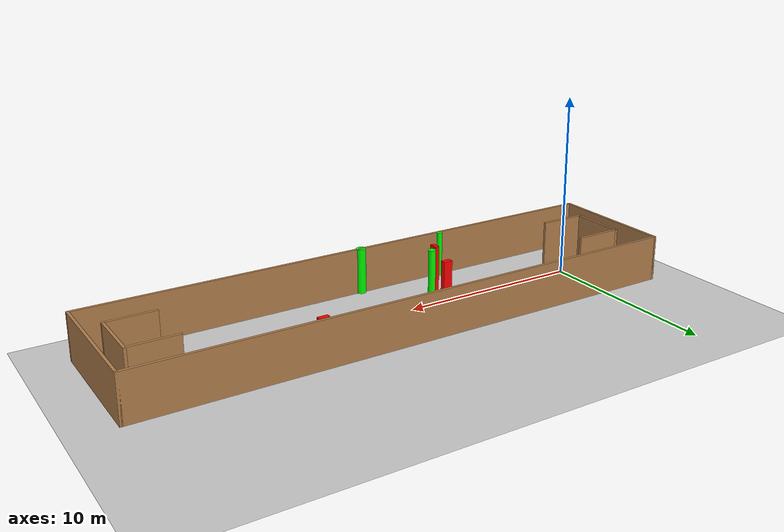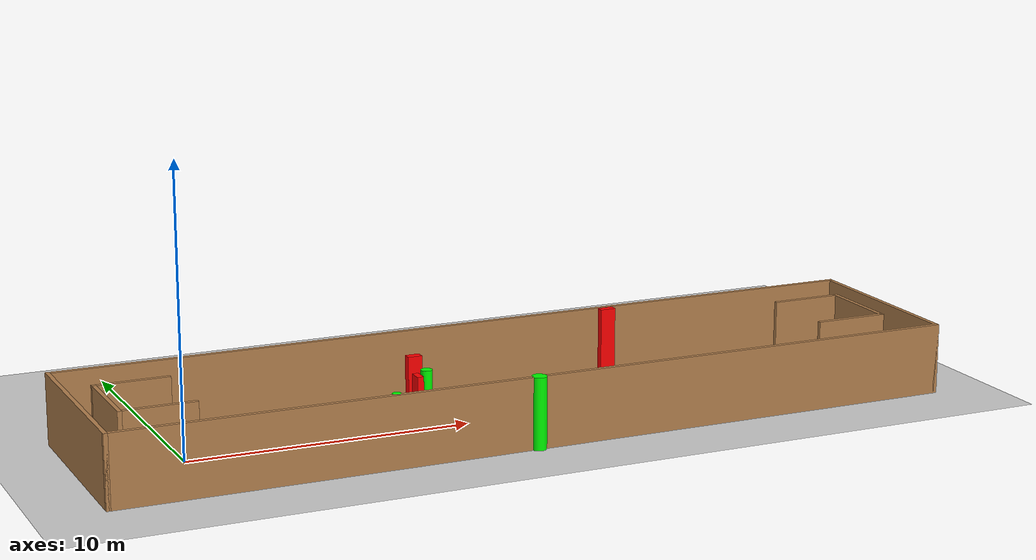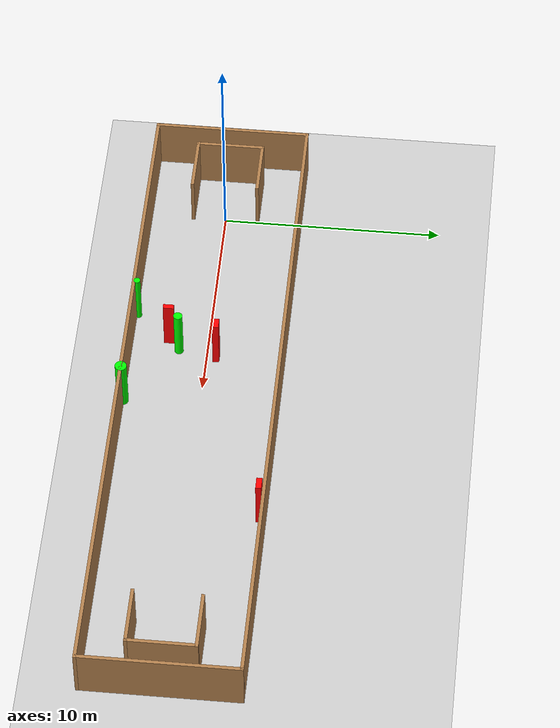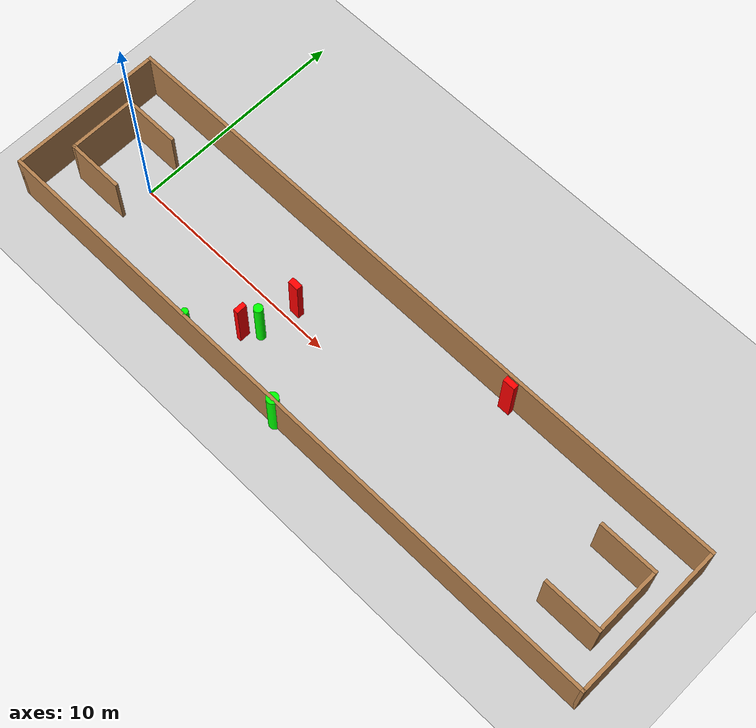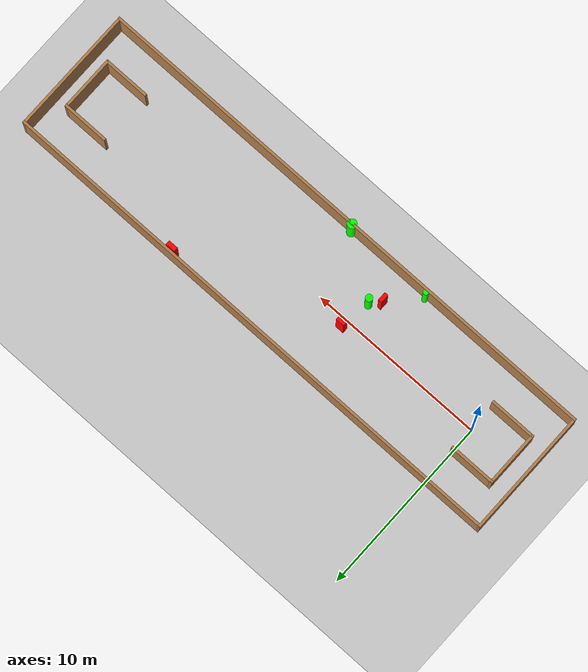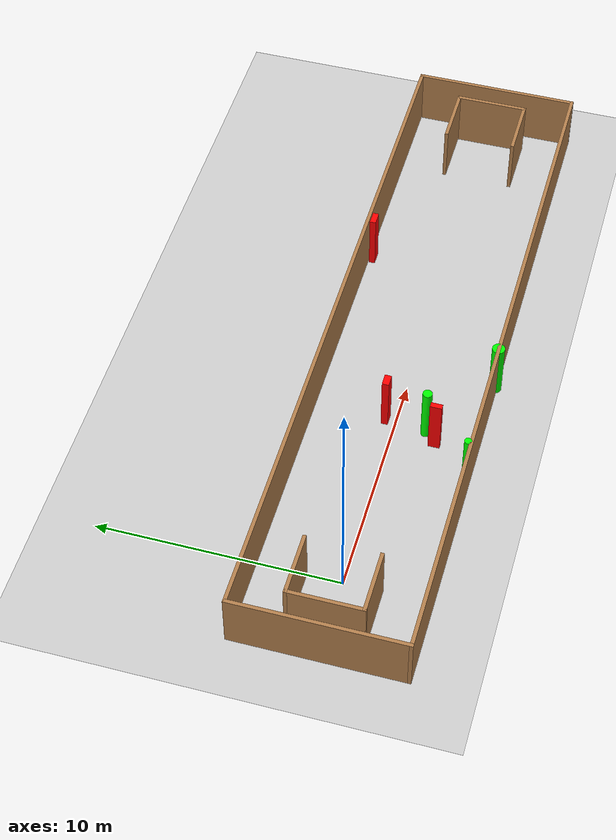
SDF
<sdf version="1.7">
 <world name="default">
  <light name="sun" type="directional">
   <pose>0 0 10 0 -0 0</pose>
   <diffuse>0.8 0.8 0.8 1</diffuse>
   <specular>0.2 0.2 0.2 1</specular>
   <attenuation>
    <range>1000</range>
    <constant>0.9</constant>
    <linear>0.01</linear>
    <quadratic>0.001</quadratic>
   </attenuation>
   <direction>-0.5 0.1 -0.9</direction>
   <spot><inner_angle>0</inner_angle><outer_angle>0</outer_angle><falloff>0</falloff></spot>
  </light>
  <model name="ground_plane">
   <static>1</static>
   <link name="link">
    <collision name="collision">
     <geometry><plane><normal>0 0 1</normal><size>100 100</size></plane></geometry>
     <surface>
      <contact><collide_bitmask>65535</collide_bitmask></contact>
      <friction><ode><mu>100</mu><mu2>50</mu2></ode></friction>
     </surface>
    </collision>
    <visual name="visual">
     <cast_shadows>0</cast_shadows>
     <geometry><plane><normal>0 0 1</normal><size>100 100</size></plane></geometry>
     <material>
      <script><uri>file://media/materials/scripts/gazebo.material</uri><name>Gazebo/Grey</name></script>
     </material>
    </visual>
   </link>
  </model>
  <gravity>0 0 -9.8</gravity>
  <magnetic_field>6e-06 2.3e-05 -4.2e-05</magnetic_field>
  <atmosphere type="adiabatic"/>
  <physics type="ode">
   <max_step_size>0.001</max_step_size>
   <real_time_factor>1</real_time_factor>
   <real_time_update_rate>1000</real_time_update_rate>
  </physics>
  <scene><ambient>0.4 0.4 0.4 1</ambient><background>0.7 0.7 0.7 1</background><shadows>1</shadows></scene>
  <spherical_coordinates>
   <surface_model>EARTH_WGS84</surface_model>
   <latitude_deg>0</latitude_deg>
   <longitude_deg>0</longitude_deg>
   <elevation>0</elevation>
   <heading_deg>0</heading_deg>
  </spherical_coordinates>
  <model name="my_base_walls">
   <link name="Wall_0">
    <collision name="Wall_0_Collision">
     <geometry><box><size>7.15 0.15 2.5</size></box></geometry>
     <pose>0 0 1.25 0 -0 0</pose>
    </collision>
    <visual name="Wall_0_Visual">
     <pose>0 0 1.25 0 -0 0</pose>
     <geometry><box><size>7.15 0.15 2.5</size></box></geometry>
     <material>
      <script><uri>file://media/materials/scripts/gazebo.material</uri><name>Gazebo/Wood</name></script>
      <ambient>1 1 1 1</ambient>
     </material>
     <meta><layer>0</layer></meta>
    </visual>
    <pose>-15 0 0 0 -0 1.5708</pose>
   </link>
   <link name="Wall_10">
    <collision name="Wall_10_Collision">
     <geometry><box><size>2.65 0.15 2.5</size></box></geometry>
     <pose>0 0 1.25 0 -0 0</pose>
    </collision>
    <visual name="Wall_10_Visual">
     <pose>0 0 1.25 0 -0 0</pose>
     <geometry><box><size>2.65 0.15 2.5</size></box></geometry>
     <material>
      <script><uri>file://media/materials/scripts/gazebo.material</uri><name>Gazebo/Wood</name></script>
      <ambient>1 1 1 1</ambient>
     </material>
     <meta><layer>0</layer></meta>
    </visual>
    <pose>-12.75 -1.5 0 0 -0 0</pose>
   </link>
   <link name="Wall_12">
    <collision name="Wall_12_Collision">
     <geometry><box><size>2.65 0.15 2.5</size></box></geometry>
     <pose>0 0 1.25 0 -0 0</pose>
    </collision>
    <visual name="Wall_12_Visual">
     <pose>0 0 1.25 0 -0 0</pose>
     <geometry><box><size>2.65 0.15 2.5</size></box></geometry>
     <material>
      <script><uri>file://media/materials/scripts/gazebo.material</uri><name>Gazebo/Wood</name></script>
      <ambient>1 1 1 1</ambient>
     </material>
     <meta><layer>0</layer></meta>
    </visual>
    <pose>-12.75 1.5 0 0 -0 0</pose>
   </link>
   <link name="Wall_14">
    <collision name="Wall_14_Collision">
     <geometry><box><size>3.15 0.15 2.5</size></box></geometry>
     <pose>0 0 1.25 0 -0 0</pose>
    </collision>
    <visual name="Wall_14_Visual">
     <pose>0 0 1.25 0 -0 0</pose>
     <geometry><box><size>3.15 0.15 2.5</size></box></geometry>
     <material>
      <script><uri>file://media/materials/scripts/gazebo.material</uri><name>Gazebo/Wood</name></script>
      <ambient>1 1 1 1</ambient>
     </material>
     <meta><layer>0</layer></meta>
    </visual>
    <pose>14 0 0 0 -0 -1.5708</pose>
   </link>
   <link name="Wall_15">
    <collision name="Wall_15_Collision">
     <geometry><box><size>2.65 0.15 2.5</size></box></geometry>
     <pose>0 0 1.25 0 -0 0</pose>
    </collision>
    <visual name="Wall_15_Visual">
     <pose>0 0 1.25 0 -0 0</pose>
     <geometry><box><size>2.65 0.15 2.5</size></box></geometry>
     <material>
      <script><uri>file://media/materials/scripts/gazebo.material</uri><name>Gazebo/Wood</name></script>
      <ambient>1 1 1 1</ambient>
     </material>
     <meta><layer>0</layer></meta>
    </visual>
    <pose>12.75 -1.5 0 0 -0 3.14159</pose>
   </link>
   <link name="Wall_17">
    <collision name="Wall_17_Collision">
     <geometry><box><size>2.65 0.15 2.5</size></box></geometry>
     <pose>0 0 1.25 0 -0 0</pose>
    </collision>
    <visual name="Wall_17_Visual">
     <pose>0 0 1.25 0 -0 0</pose>
     <geometry><box><size>2.65 0.15 2.5</size></box></geometry>
     <material>
      <script><uri>file://media/materials/scripts/gazebo.material</uri><name>Gazebo/Wood</name></script>
      <ambient>1 1 1 1</ambient>
     </material>
     <meta><layer>0</layer></meta>
    </visual>
    <pose>12.75 1.5 0 0 -0 3.14159</pose>
   </link>
   <link name="Wall_2">
    <collision name="Wall_2_Collision">
     <geometry><box><size>30.15 0.15 2.5</size></box></geometry>
     <pose>0 0 1.25 0 -0 0</pose>
    </collision>
    <visual name="Wall_2_Visual">
     <pose>0 0 1.25 0 -0 0</pose>
     <geometry><box><size>30.15 0.15 2.5</size></box></geometry>
     <material>
      <script><uri>file://media/materials/scripts/gazebo.material</uri><name>Gazebo/Wood</name></script>
      <ambient>1 1 1 1</ambient>
     </material>
     <meta><layer>0</layer></meta>
    </visual>
    <pose>-0 -3.5 0 0 -0 0</pose>
   </link>
   <link name="Wall_4">
    <collision name="Wall_4_Collision">
     <geometry><box><size>30.15 0.15 2.5</size></box></geometry>
     <pose>0 0 1.25 0 -0 0</pose>
    </collision>
    <visual name="Wall_4_Visual">
     <pose>0 0 1.25 0 -0 0</pose>
     <geometry><box><size>30.15 0.15 2.5</size></box></geometry>
     <material>
      <script><uri>file://media/materials/scripts/gazebo.material</uri><name>Gazebo/Wood</name></script>
      <ambient>1 1 1 1</ambient>
     </material>
     <meta><layer>0</layer></meta>
    </visual>
    <pose>-0 3.5 0 0 -0 0</pose>
   </link>
   <link name="Wall_6">
    <collision name="Wall_6_Collision">
     <geometry><box><size>7.15 0.15 2.5</size></box></geometry>
     <pose>0 0 1.25 0 -0 0</pose>
    </collision>
    <visual name="Wall_6_Visual">
     <pose>0 0 1.25 0 -0 0</pose>
     <geometry><box><size>7.15 0.15 2.5</size></box></geometry>
     <material>
      <script><uri>file://media/materials/scripts/gazebo.material</uri><name>Gazebo/Wood</name></script>
      <ambient>1 1 1 1</ambient>
     </material>
     <meta><layer>0</layer></meta>
    </visual>
    <pose>15 0 0 0 -0 -1.5708</pose>
   </link>
   <link name="Wall_9">
    <collision name="Wall_9_Collision">
     <geometry><box><size>3.15 0.15 2.5</size></box></geometry>
     <pose>0 0 1.25 0 -0 0</pose>
    </collision>
    <visual name="Wall_9_Visual">
     <pose>0 0 1.25 0 -0 0</pose>
     <geometry><box><size>3.15 0.15 2.5</size></box></geometry>
     <material>
      <script><uri>file://media/materials/scripts/gazebo.material</uri><name>Gazebo/Wood</name></script>
      <ambient>1 1 1 1</ambient>
     </material>
     <meta><layer>0</layer></meta>
    </visual>
    <pose>-14 0 0 0 -0 -1.5708</pose>
   </link>
   <static>1</static>
   <pose>11.5 0 0 0 -0 0</pose>
  </model>
  <model name="cylinder1">
   <static>1</static>
   <link name="link">
    <inertial>
     <mass>1</mass>
     <inertia><ixx>0.5</ixx><ixy>0</ixy><ixz>0</ixz><iyy>0.5</iyy><iyz>0</iyz><izz>1</izz></inertia>
    </inertial>
    <collision name="collision">
     <geometry><cylinder><radius>0.15294155254377556</radius><length>2.5</length></cylinder></geometry>
    </collision>
    <visual name="visual">
     <geometry><cylinder><radius>0.15294155254377556</radius><length>2.5</length></cylinder></geometry>
     <material>
      <ambient>0 1 0 1</ambient>
      <diffuse>0 1 0 1</diffuse>
      <specular>0.1 0.1 0.1 1</specular>
      <emissive>0 0 0 0</emissive>
     </material>
    </visual>
   </link>
   <pose>6.076355662608417 -3.36208467496209 1.25 0 0 0</pose>
  </model>
  <model name="cylinder2">
   <static>1</static>
   <link name="link">
    <inertial>
     <mass>1</mass>
     <inertia><ixx>0.5</ixx><ixy>0</ixy><ixz>0</ixz><iyy>0.5</iyy><iyz>0</iyz><izz>1</izz></inertia>
    </inertial>
    <collision name="collision">
     <geometry><cylinder><radius>0.2626549333472407</radius><length>2.5</length></cylinder></geometry>
    </collision>
    <visual name="visual">
     <geometry><cylinder><radius>0.2626549333472407</radius><length>2.5</length></cylinder></geometry>
     <material>
      <ambient>0 1 0 1</ambient>
      <diffuse>0 1 0 1</diffuse>
      <specular>0.1 0.1 0.1 1</specular>
      <emissive>0 0 0 0</emissive>
     </material>
    </visual>
   </link>
   <pose>11.047153896760454 -3.4841819573102084 1.25 0 0 0</pose>
  </model>
  <model name="cylinder3">
   <static>1</static>
   <link name="link">
    <inertial>
     <mass>1</mass>
     <inertia><ixx>0.5</ixx><ixy>0</ixy><ixz>0</ixz><iyy>0.5</iyy><iyz>0</iyz><izz>1</izz></inertia>
    </inertial>
    <collision name="collision">
     <geometry><cylinder><radius>0.1997743705442228</radius><length>2.5</length></cylinder></geometry>
    </collision>
    <visual name="visual">
     <geometry><cylinder><radius>0.1997743705442228</radius><length>2.5</length></cylinder></geometry>
     <material>
      <ambient>0 1 0 1</ambient>
      <diffuse>0 1 0 1</diffuse>
      <specular>0.1 0.1 0.1 1</specular>
      <emissive>0 0 0 0</emissive>
     </material>
    </visual>
   </link>
   <pose>7.9733892989180415 -1.2826227211868515 1.25 0 0 0</pose>
  </model>
  <model name="box1">
   <static>1</static>
   <link name="link">
    <inertial>
     <mass>1</mass>
     <inertia><ixx>0.083</ixx><ixy>0</ixy><ixz>0</ixz><iyy>0.083</iyy><iyz>0</iyz><izz>0.083</izz></inertia>
    </inertial>
    <collision name="collision">
     <geometry><box><size>0.22045814846142445 0.4854425904819726 2.5</size></box></geometry>
    </collision>
    <visual name="visual">
     <geometry><box><size>0.22045814846142445 0.4854425904819726 2.5</size></box></geometry>
     <material>
      <ambient>1 0 0 1</ambient>
      <diffuse>1 0 0 1</diffuse>
      <specular>0.1 0.1 0.1 1</specular>
      <emissive>0 0 0 0</emissive>
     </material>
    </visual>
    <sensor name="my_contact" type="contact">
     <contact><collision>box_collision</collision><topic>__default_topic__</topic></contact>
    </sensor>
   </link>
   <pose>7.465711209471364 -1.7650149190495557 1.25 0 0 0</pose>
  </model>
  <model name="box2">
   <static>1</static>
   <link name="link">
    <inertial>
     <mass>1</mass>
     <inertia><ixx>0.083</ixx><ixy>0</ixy><ixz>0</ixz><iyy>0.083</iyy><iyz>0</iyz><izz>0.083</izz></inertia>
    </inertial>
    <collision name="collision">
     <geometry><box><size>0.5553076372463905 0.25259015297671605 2.5</size></box></geometry>
    </collision>
    <visual name="visual">
     <geometry><box><size>0.5553076372463905 0.25259015297671605 2.5</size></box></geometry>
     <material>
      <ambient>1 0 0 1</ambient>
      <diffuse>1 0 0 1</diffuse>
      <specular>0.1 0.1 0.1 1</specular>
      <emissive>0 0 0 0</emissive>
     </material>
    </visual>
    <sensor name="my_contact" type="contact">
     <contact><collision>box_collision</collision><topic>__default_topic__</topic></contact>
    </sensor>
   </link>
   <pose>16.915070489899314 3.256316730013598 1.25 0 0 0</pose>
  </model>
  <model name="box3">
   <static>1</static>
   <link name="link">
    <inertial>
     <mass>1</mass>
     <inertia><ixx>0.083</ixx><ixy>0</ixy><ixz>0</ixz><iyy>0.083</iyy><iyz>0</iyz><izz>0.083</izz></inertia>
    </inertial>
    <collision name="collision">
     <geometry><box><size>0.49398869907380955 0.2840179389483963 2.5</size></box></geometry>
    </collision>
    <visual name="visual">
     <geometry><box><size>0.49398869907380955 0.2840179389483963 2.5</size></box></geometry>
     <material>
      <ambient>1 0 0 1</ambient>
      <diffuse>1 0 0 1</diffuse>
      <specular>0.1 0.1 0.1 1</specular>
      <emissive>0 0 0 0</emissive>
     </material>
    </visual>
    <sensor name="my_contact" type="contact">
     <contact><collision>box_collision</collision><topic>__default_topic__</topic></contact>
    </sensor>
   </link>
   <pose>8.224954623852035 0.44771637578755863 1.25 0 0 0</pose>
  </model>
 </world>
</sdf>
